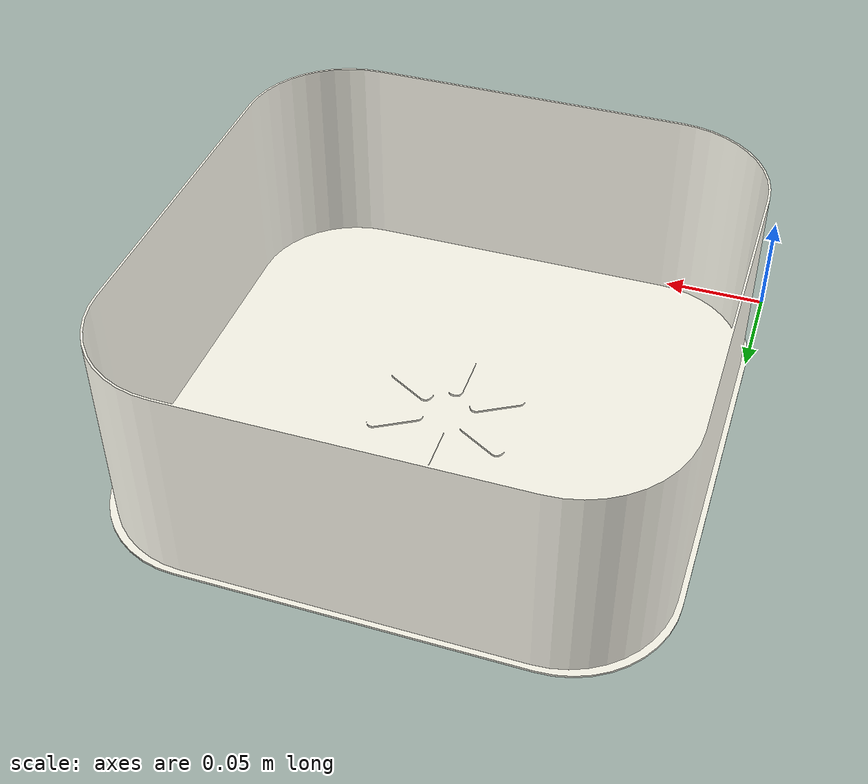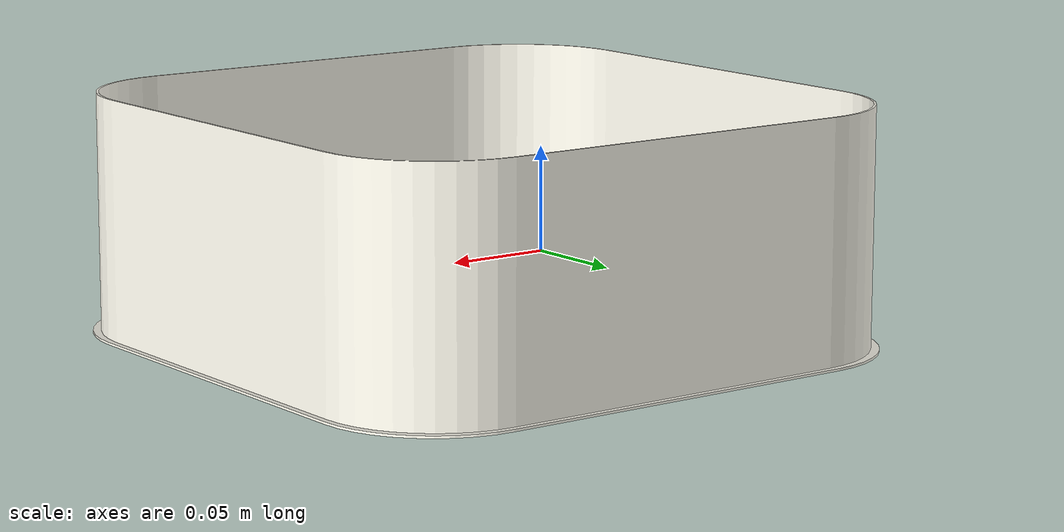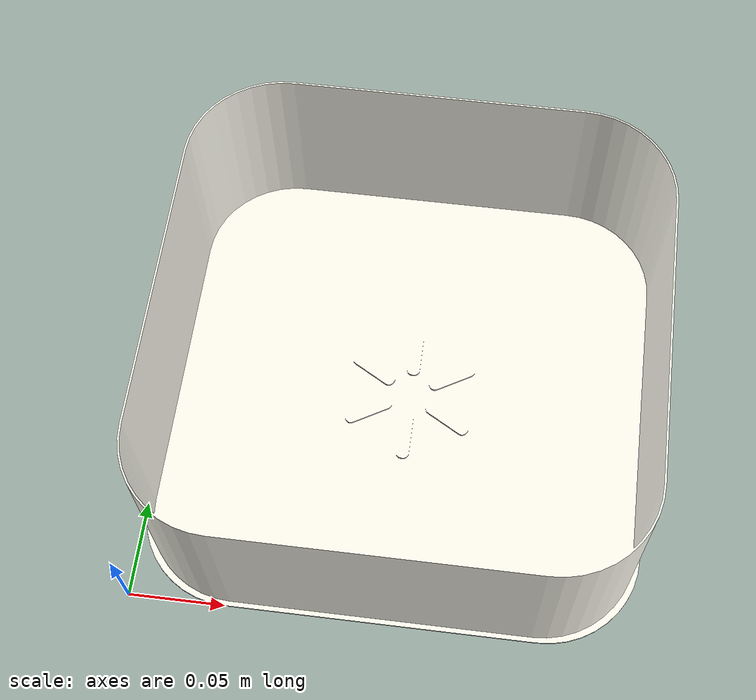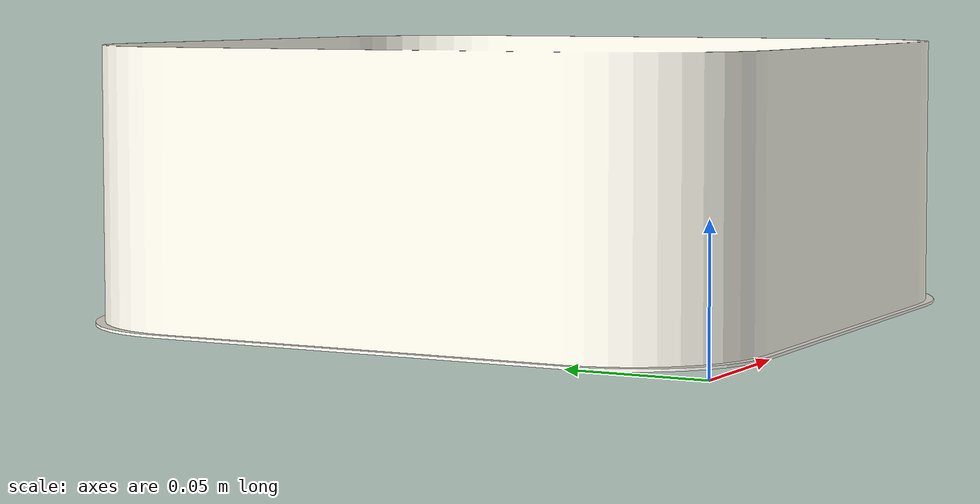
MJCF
<mujoco model="bread_picking">
  <compiler angle="radian" meshdir="." autolimits="true" />

  <asset>
    <mesh name="bread_box_visual" file="bread_box.STL" scale="0.001 0.001 0.001"/>
    <mesh name="bread_box_collision" file="bread_box.STL" scale="0.001 0.001 0.001"/>
  </asset>

  <option sdf_iterations="15" sdf_initpoints="100"/>

  <worldbody>
    <body name="bread_box" pos="0 0 0">
      <geom type="mesh"
            mesh="bread_box_visual"
            rgba="1 0.99 0.94 1"
            friction="0.5 0.005 0.0001"
            solref="0.001 1"
            solimp="0.99 0.99 0.001"
            contype="1"
            conaffinity="1"/>
    </body>
  </worldbody>
</mujoco>
